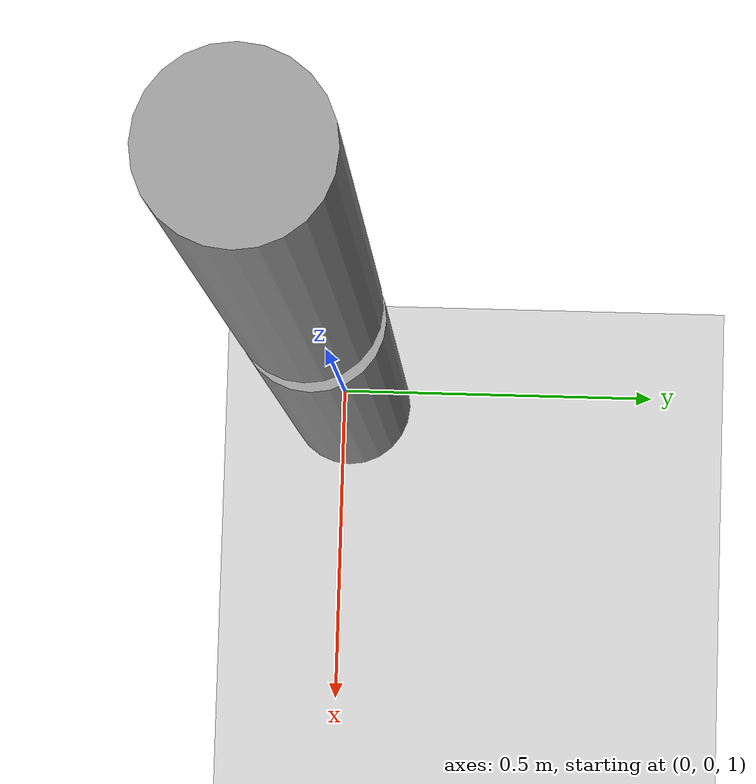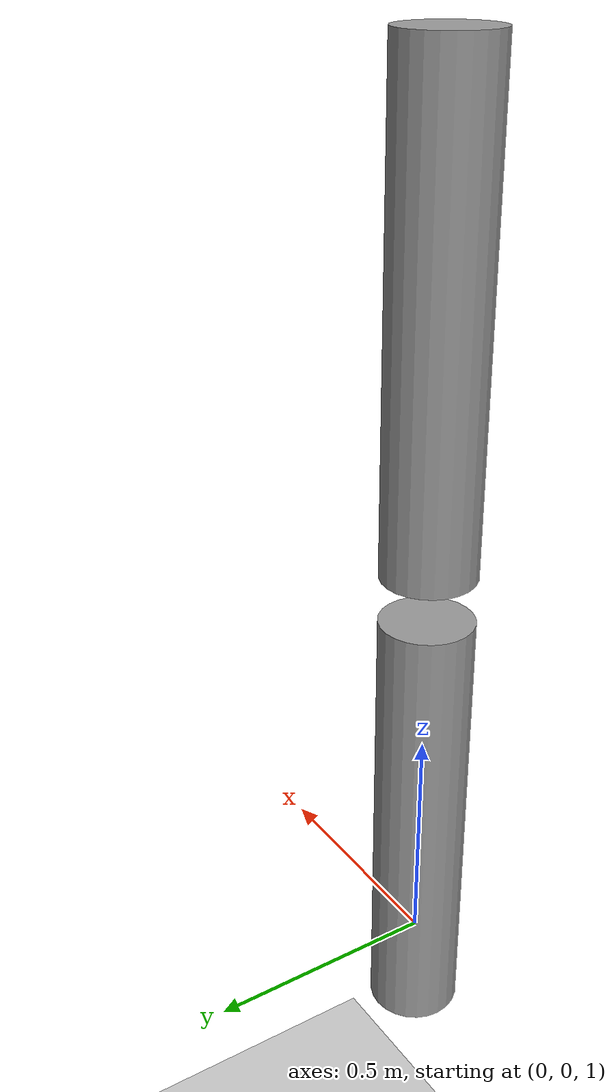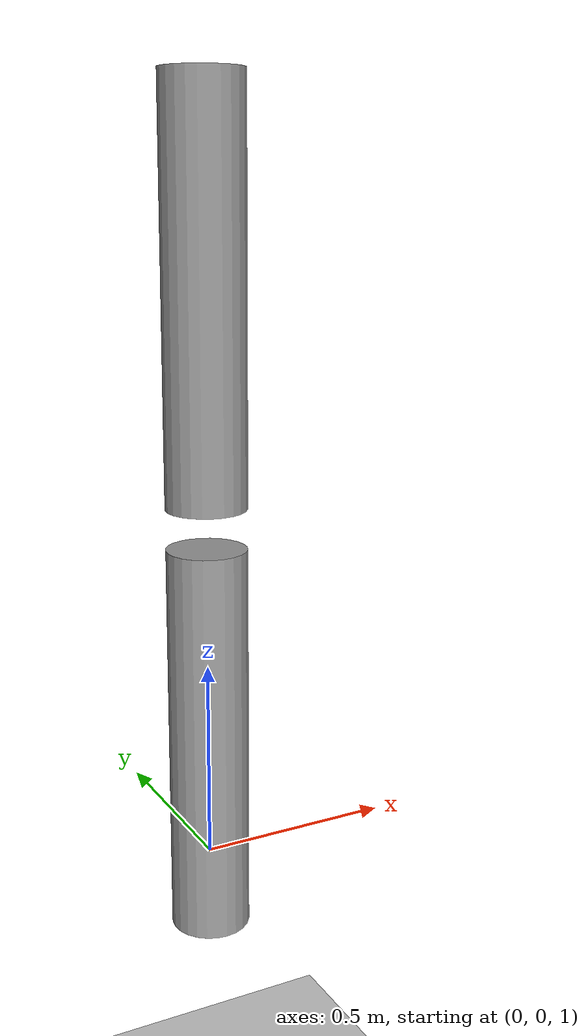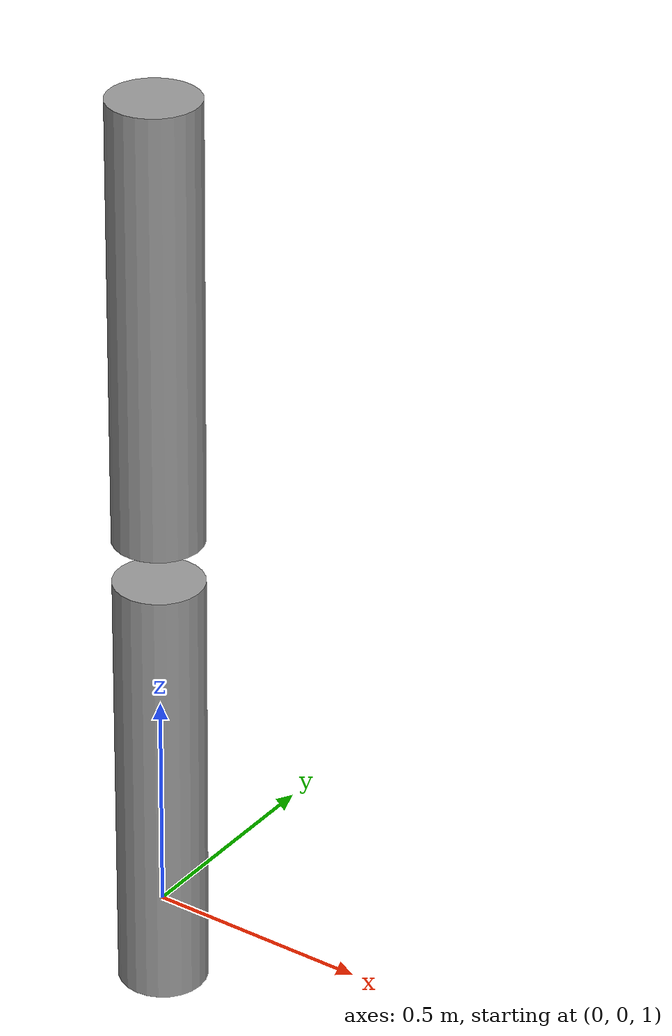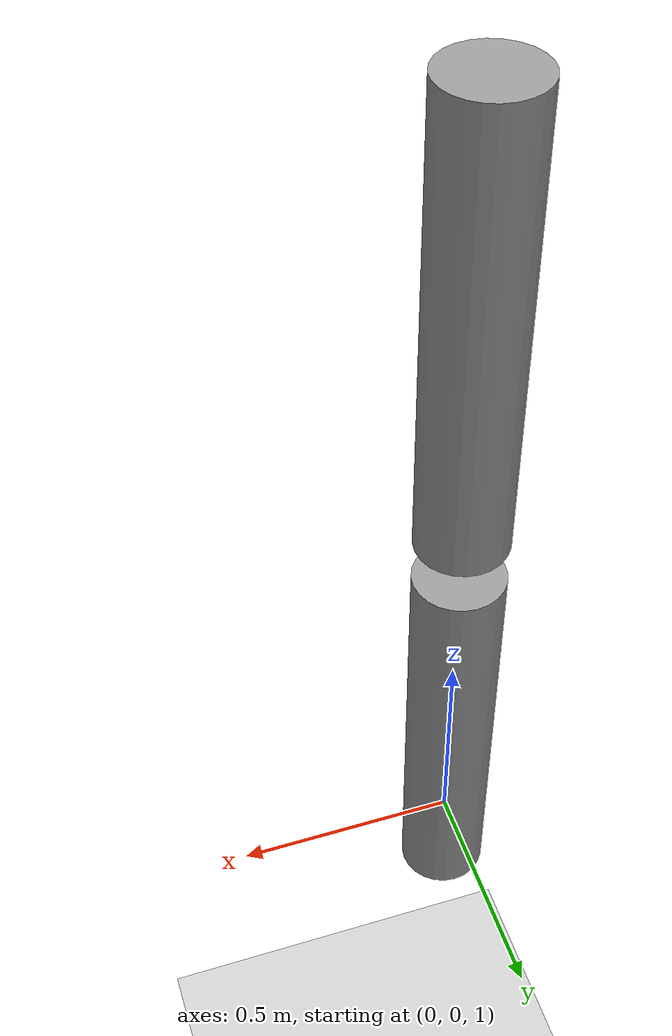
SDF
<sdf version="1.6">
 <world name="default">
  <light name="sun" type="directional">
   <pose>0 0 10 0 -0 0</pose>
   <diffuse>0.8 0.8 0.8 1</diffuse>
   <specular>0.1 0.1 0.1 1</specular>
   <attenuation>
    <range>1000</range>
    <constant>0.9</constant>
    <linear>0.01</linear>
    <quadratic>0.001</quadratic>
   </attenuation>
   <direction>-0.5 0.5 -1</direction>
  </light>
  <model name="ground_plane">
   <static>1</static>
   <link name="link">
    <collision name="collision">
     <geometry><plane><normal>0 0 1</normal><size>100 100</size></plane></geometry>
     <surface><friction><ode><mu>100</mu><mu2>50</mu2></ode></friction></surface>
    </collision>
    <visual name="visual">
     <cast_shadows>0</cast_shadows>
     <geometry><plane><normal>0 0 1</normal><size>100 100</size></plane></geometry>
     <material>
      <script><uri>file://media/materials/scripts/gazebo.material</uri><name>Gazebo/Grey</name></script>
     </material>
    </visual>
   </link>
  </model>
  <gravity>0 0 0</gravity>
  <magnetic_field>6e-06 2.3e-05 -4.2e-05</magnetic_field>
  <atmosphere type="adiabatic"/>
  <physics name="default_physics" default="0" type="ode">
   <max_step_size>0.001</max_step_size>
   <real_time_factor>1</real_time_factor>
   <real_time_update_rate>1000</real_time_update_rate>
   <ode>
    <solver>
     <type>quick</type>
     <iters>50</iters>
     <sor>1</sor>
     <use_dynamic_moi_rescaling>0</use_dynamic_moi_rescaling>
    </solver>
    <constraints>
     <cfm>0</cfm>
     <erp>0.2</erp>
     <contact_max_correcting_vel>100</contact_max_correcting_vel>
     <contact_surface_layer>0.001</contact_surface_layer>
    </constraints>
   </ode>
  </physics>
  <scene><ambient>0.4 0.4 0.4 1</ambient><background>0.7 0.7 0.7 1</background><shadows>1</shadows></scene>
  <spherical_coordinates>
   <surface_model>EARTH_WGS84</surface_model>
   <latitude_deg>0</latitude_deg>
   <longitude_deg>0</longitude_deg>
   <elevation>0</elevation>
   <heading_deg>0</heading_deg>
  </spherical_coordinates>
  <model name="two_bar_with_revolute">
   <pose>0 0 1.85445 0 -0 0</pose>
   <link name="bottom_link">
    <pose>0 0 -0.55 0 -0 0</pose>
    <inertial>
     <mass>1</mass>
     <inertia><ixx>0.145833</ixx><ixy>0</ixy><ixz>0</ixz><iyy>0.145833</iyy><iyz>0</iyz><izz>0.125</izz></inertia>
    </inertial>
    <visual name="visual">
     <geometry><cylinder><radius>0.1</radius><length>1</length></cylinder></geometry>
     <material>
      <lighting>1</lighting>
      <script><uri>file://media/materials/scripts/gazebo.material</uri><name>Gazebo/Grey</name></script>
      <ambient>0.3 0.3 0.3 1</ambient>
      <diffuse>0.7 0.7 0.7 1</diffuse>
      <specular>0.01 0.01 0.01 1</specular>
      <emissive>0 0 0 1</emissive>
      <shader type="vertex"><normal_map>__default__</normal_map></shader>
     </material>
    </visual>
    <collision name="collision">
     <geometry><cylinder><radius>0.1</radius><length>1</length></cylinder></geometry>
     <surface>
      <friction>
       <ode><mu>1</mu><mu2>1</mu2><fdir1>0 0 0</fdir1><slip1>0</slip1><slip2>0</slip2></ode>
       <torsional>
        <coefficient>1</coefficient>
        <patch_radius>0</patch_radius>
        <surface_radius>0</surface_radius>
        <use_patch_radius>1</use_patch_radius>
        <ode><slip>0</slip></ode>
       </torsional>
      </friction>
      <bounce><restitution_coefficient>0</restitution_coefficient><threshold>1e+06</threshold></bounce>
      <contact>
       <collide_without_contact>0</collide_without_contact>
       <collide_without_contact_bitmask>1</collide_without_contact_bitmask>
       <collide_bitmask>1</collide_bitmask>
       <ode>
        <soft_cfm>0</soft_cfm>
        <soft_erp>0.2</soft_erp>
        <kp>1e+13</kp>
        <kd>1</kd>
        <max_vel>0.01</max_vel>
        <min_depth>0</min_depth>
       </ode>
       <bullet>
        <split_impulse>1</split_impulse>
        <split_impulse_penetration_threshold>-0.01</split_impulse_penetration_threshold>
        <soft_cfm>0</soft_cfm>
        <soft_erp>0.2</soft_erp>
        <kp>1e+13</kp>
        <kd>1</kd>
       </bullet>
      </contact>
     </surface>
    </collision>
   </link>
   <link name="top_link">
    <pose>0 0 0.55 0 -0 0</pose>
    <inertial>
     <mass>1</mass>
     <inertia><ixx>0.145833</ixx><ixy>0</ixy><ixz>0</ixz><iyy>0.145833</iyy><iyz>0</iyz><izz>0.125</izz></inertia>
    </inertial>
    <visual name="visual">
     <geometry><cylinder><radius>0.1</radius><length>1</length></cylinder></geometry>
     <material>
      <lighting>1</lighting>
      <script><uri>file://media/materials/scripts/gazebo.material</uri><name>Gazebo/Grey</name></script>
      <ambient>0.3 0.3 0.3 1</ambient>
      <diffuse>0.7 0.7 0.7 1</diffuse>
      <specular>0.01 0.01 0.01 1</specular>
      <emissive>0 0 0 1</emissive>
      <shader type="vertex"><normal_map>__default__</normal_map></shader>
     </material>
    </visual>
    <collision name="collision">
     <geometry><cylinder><radius>0.1</radius><length>1</length></cylinder></geometry>
     <surface>
      <friction>
       <ode><mu>1</mu><mu2>1</mu2><fdir1>0 0 0</fdir1><slip1>0</slip1><slip2>0</slip2></ode>
       <torsional>
        <coefficient>1</coefficient>
        <patch_radius>0</patch_radius>
        <surface_radius>0</surface_radius>
        <use_patch_radius>1</use_patch_radius>
        <ode><slip>0</slip></ode>
       </torsional>
      </friction>
      <bounce><restitution_coefficient>0</restitution_coefficient><threshold>1e+06</threshold></bounce>
      <contact>
       <collide_without_contact>0</collide_without_contact>
       <collide_without_contact_bitmask>1</collide_without_contact_bitmask>
       <collide_bitmask>1</collide_bitmask>
       <ode>
        <soft_cfm>0</soft_cfm>
        <soft_erp>0.2</soft_erp>
        <kp>1e+13</kp>
        <kd>1</kd>
        <max_vel>0.01</max_vel>
        <min_depth>0</min_depth>
       </ode>
       <bullet>
        <split_impulse>1</split_impulse>
        <split_impulse_penetration_threshold>-0.01</split_impulse_penetration_threshold>
        <soft_cfm>0</soft_cfm>
        <soft_erp>0.2</soft_erp>
        <kp>1e+13</kp>
        <kd>1</kd>
       </bullet>
      </contact>
     </surface>
    </collision>
   </link>
   <joint name="middle_joint" type="revolute">
    <parent>bottom_link</parent>
    <child>top_link</child>
    <pose>0 0 -0.55 0 -0 0</pose>
    <axis>
     <xyz>1 0 0</xyz>
     <use_parent_model_frame>0</use_parent_model_frame>
     <limit><lower>-1.5</lower><upper>1.5</upper><effort>-1</effort><velocity>-1</velocity></limit>
     <dynamics>
      <spring_reference>0</spring_reference>
      <spring_stiffness>0</spring_stiffness>
      <damping>0</damping>
      <friction>0</friction>
     </dynamics>
    </axis>
    <physics>
     <ode><limit><cfm>0</cfm><erp>0.2</erp></limit><suspension><cfm>0</cfm><erp>0.2</erp></suspension></ode>
     <provide_feedback>true</provide_feedback>
    </physics>
   </joint>
   <joint name="prismatic_joint" type="prismatic">
    <parent>world</parent>
    <child>top_link</child>
    <pose>0 0 0.5 0 -0 0</pose>
    <axis><xyz>0 1 0</xyz></axis>
    <physics>
     <ode><limit><cfm>0</cfm><erp>0.2</erp></limit><suspension><cfm>0</cfm><erp>0.2</erp></suspension></ode>
     <provide_feedback>true</provide_feedback>
    </physics>
   </joint>
   <static>0</static>
   <pose>0 0 1.05 0 -0 0</pose>
  </model>
 </world>
</sdf>
